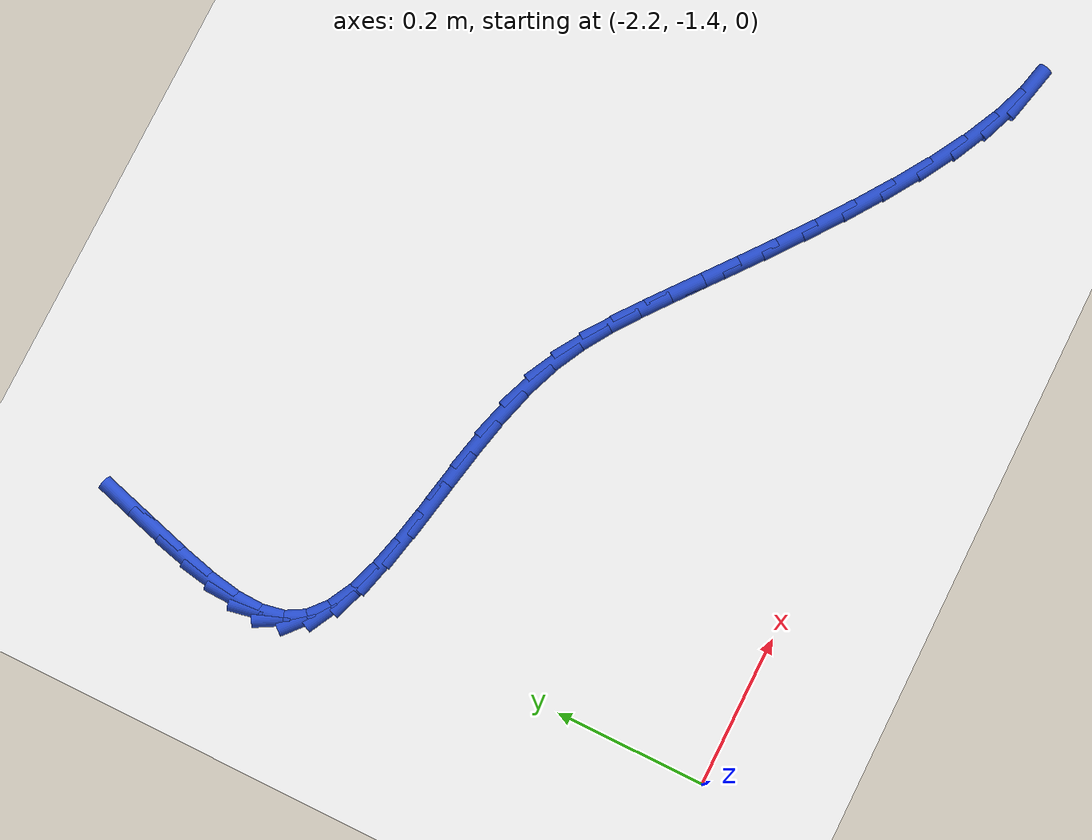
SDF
<sdf version="1.6">
 <world name="default">
  <model name="ground_plane">
   <static>1</static>
   <link name="link">
    <collision name="collision">
     <geometry><plane><normal>0 0 1</normal><size>100 100</size></plane></geometry>
     <surface><friction><ode><mu>100</mu><mu2>50</mu2></ode></friction></surface>
    </collision>
    <visual name="visual">
     <cast_shadows>0</cast_shadows>
     <geometry><plane><normal>0 0 1</normal><size>100 100</size></plane></geometry>
     <material>
      <script><uri>file://media/materials/scripts/gazebo.material</uri><name>Gazebo/WhiteGlow</name></script>
     </material>
    </visual>
   </link>
  </model>
  <model name="line">
   <link name="link_112">
    <pose>-2.204769506902918 -0.6014974802048982 0.01 0 1.57 1.2856489855063478</pose>
    <collision name="collision">
     <geometry><cylinder><radius>0.01</radius><length>0.08</length></cylinder></geometry>
    </collision>
    <visual name="visual">
     <material>
      <script><name>Gazebo/Blue</name><uri>file://media/materials/scripts/gazebo.material</uri></script>
     </material>
     <geometry><cylinder><radius>0.01</radius><length>0.08</length></cylinder></geometry>
    </visual>
   </link>
   <link name="link_113">
    <pose>-2.219062844298356 -0.6502576358702046 0.01 0 1.57 1.287739815175744</pose>
    <collision name="collision">
     <geometry><cylinder><radius>0.01</radius><length>0.08</length></cylinder></geometry>
    </collision>
    <visual name="visual">
     <material>
      <script><name>Gazebo/Blue</name><uri>file://media/materials/scripts/gazebo.material</uri></script>
     </material>
     <geometry><cylinder><radius>0.01</radius><length>0.08</length></cylinder></geometry>
    </visual>
   </link>
   <link name="link_114">
    <pose>-2.232395662308681 -0.6960959097266776 0.01 0 1.57 1.3212701812712226</pose>
    <collision name="collision">
     <geometry><cylinder><radius>0.01</radius><length>0.08</length></cylinder></geometry>
    </collision>
    <visual name="visual">
     <material>
      <script><name>Gazebo/Blue</name><uri>file://media/materials/scripts/gazebo.material</uri></script>
     </material>
     <geometry><cylinder><radius>0.01</radius><length>0.08</length></cylinder></geometry>
    </visual>
   </link>
   <link name="link_115">
    <pose>-2.24323895782572 -0.7386457969712786 0.01 0 1.57 1.397098030081824</pose>
    <collision name="collision">
     <geometry><cylinder><radius>0.01</radius><length>0.08</length></cylinder></geometry>
    </collision>
    <visual name="visual">
     <material>
      <script><name>Gazebo/Blue</name><uri>file://media/materials/scripts/gazebo.material</uri></script>
     </material>
     <geometry><cylinder><radius>0.01</radius><length>0.08</length></cylinder></geometry>
    </visual>
   </link>
   <link name="link_116">
    <pose>-2.2500637277413 -0.7775407928009685 0.01 0 1.57 1.5341878151946746</pose>
    <collision name="collision">
     <geometry><cylinder><radius>0.01</radius><length>0.08</length></cylinder></geometry>
    </collision>
    <visual name="visual">
     <material>
      <script><name>Gazebo/Blue</name><uri>file://media/materials/scripts/gazebo.material</uri></script>
     </material>
     <geometry><cylinder><radius>0.01</radius><length>0.08</length></cylinder></geometry>
    </visual>
   </link>
   <link name="link_117">
    <pose>-2.2513409689472486 -0.8124143924127079 0.01 0 1.57 -1.3828125246313863</pose>
    <collision name="collision">
     <geometry><cylinder><radius>0.01</radius><length>0.08</length></cylinder></geometry>
    </collision>
    <visual name="visual">
     <material>
      <script><name>Gazebo/Blue</name><uri>file://media/materials/scripts/gazebo.material</uri></script>
     </material>
     <geometry><cylinder><radius>0.01</radius><length>0.08</length></cylinder></geometry>
    </visual>
   </link>
   <link name="link_118">
    <pose>-2.2455416783353934 -0.8429000910034576 0.01 0 1.57 -1.0604818858150808</pose>
    <collision name="collision">
     <geometry><cylinder><radius>0.01</radius><length>0.08</length></cylinder></geometry>
    </collision>
    <visual name="visual">
     <material>
      <script><name>Gazebo/Blue</name><uri>file://media/materials/scripts/gazebo.material</uri></script>
     </material>
     <geometry><cylinder><radius>0.01</radius><length>0.08</length></cylinder></geometry>
    </visual>
   </link>
   <link name="link_119">
    <pose>-2.2311378111931037 -0.8686317766184315 0.01 0 1.57 -0.7204730807839345</pose>
    <collision name="collision">
     <geometry><cylinder><radius>0.01</radius><length>0.08</length></cylinder></geometry>
    </collision>
    <visual name="visual">
     <material>
      <script><name>Gazebo/Blue</name><uri>file://media/materials/scripts/gazebo.material</uri></script>
     </material>
     <geometry><cylinder><radius>0.01</radius><length>0.08</length></cylinder></geometry>
    </visual>
   </link>
   <link name="link_120">
    <pose>-2.207322821430002 -0.8895390810327521 0.01 0 1.57 -0.4838973346524141</pose>
    <collision name="collision">
     <geometry><cylinder><radius>0.01</radius><length>0.08</length></cylinder></geometry>
    </collision>
    <visual name="visual">
     <material>
      <script><name>Gazebo/Blue</name><uri>file://media/materials/scripts/gazebo.material</uri></script>
     </material>
     <geometry><cylinder><radius>0.01</radius><length>0.08</length></cylinder></geometry>
    </visual>
   </link>
   <link name="link_121">
    <pose>-2.1752935755647105 -0.9063728388613836 0.01 0 1.57 -0.3391317087028909</pose>
    <collision name="collision">
     <geometry><cylinder><radius>0.01</radius><length>0.08</length></cylinder></geometry>
    </collision>
    <visual name="visual">
     <material>
      <script><name>Gazebo/Blue</name><uri>file://media/materials/scripts/gazebo.material</uri></script>
     </material>
     <geometry><cylinder><radius>0.01</radius><length>0.08</length></cylinder></geometry>
    </visual>
   </link>
   <link name="link_122">
    <pose>-2.136591856276469 -0.9200252665441491 0.01 0 1.57 -0.2536603252751692</pose>
    <collision name="collision">
     <geometry><cylinder><radius>0.01</radius><length>0.08</length></cylinder></geometry>
    </collision>
    <visual name="visual">
     <material>
      <script><name>Gazebo/Blue</name><uri>file://media/materials/scripts/gazebo.material</uri></script>
     </material>
     <geometry><cylinder><radius>0.01</radius><length>0.08</length></cylinder></geometry>
    </visual>
   </link>
   <link name="link_123">
    <pose>-2.092759446244518 -0.9313885805208718 0.01 0 1.57 -0.20715255023216683</pose>
    <collision name="collision">
     <geometry><cylinder><radius>0.01</radius><length>0.08</length></cylinder></geometry>
    </collision>
    <visual name="visual">
     <material>
      <script><name>Gazebo/Blue</name><uri>file://media/materials/scripts/gazebo.material</uri></script>
     </material>
     <geometry><cylinder><radius>0.01</radius><length>0.08</length></cylinder></geometry>
    </visual>
   </link>
   <link name="link_124">
    <pose>-2.0453381281480967 -0.9413549972313751 0.01 0 1.57 -0.1889855914093791</pose>
    <collision name="collision">
     <geometry><cylinder><radius>0.01</radius><length>0.08</length></cylinder></geometry>
    </collision>
    <visual name="visual">
     <material>
      <script><name>Gazebo/Blue</name><uri>file://media/materials/scripts/gazebo.material</uri></script>
     </material>
     <geometry><cylinder><radius>0.01</radius><length>0.08</length></cylinder></geometry>
    </visual>
   </link>
   <link name="link_125">
    <pose>-1.9958696846664477 -0.9508167331154824 0.01 0 1.57 -0.19459472882993856</pose>
    <collision name="collision">
     <geometry><cylinder><radius>0.01</radius><length>0.08</length></cylinder></geometry>
    </collision>
    <visual name="visual">
     <material>
      <script><name>Gazebo/Blue</name><uri>file://media/materials/scripts/gazebo.material</uri></script>
     </material>
     <geometry><cylinder><radius>0.01</radius><length>0.08</length></cylinder></geometry>
    </visual>
   </link>
   <link name="link_126">
    <pose>-1.945895898478807 -0.9606660046130168 0.01 0 1.57 -0.22361065704793673</pose>
    <collision name="collision">
     <geometry><cylinder><radius>0.01</radius><length>0.08</length></cylinder></geometry>
    </collision>
    <visual name="visual">
     <material>
      <script><name>Gazebo/Blue</name><uri>file://media/materials/scripts/gazebo.material</uri></script>
     </material>
     <geometry><cylinder><radius>0.01</radius><length>0.08</length></cylinder></geometry>
    </visual>
   </link>
   <link name="link_127">
    <pose>-1.896958552264417 -0.9717950281638013 0.01 0 1.57 -0.2794066925540305</pose>
    <collision name="collision">
     <geometry><cylinder><radius>0.01</radius><length>0.08</length></cylinder></geometry>
    </collision>
    <visual name="visual">
     <material>
      <script><name>Gazebo/Blue</name><uri>file://media/materials/scripts/gazebo.material</uri></script>
     </material>
     <geometry><cylinder><radius>0.01</radius><length>0.08</length></cylinder></geometry>
    </visual>
   </link>
   <link name="link_128">
    <pose>-1.8505994287025174 -0.9850960202076596 0.01 0 1.57 -0.36877149154027516</pose>
    <collision name="collision">
     <geometry><cylinder><radius>0.01</radius><length>0.08</length></cylinder></geometry>
    </collision>
    <visual name="visual">
     <material>
      <script><name>Gazebo/Blue</name><uri>file://media/materials/scripts/gazebo.material</uri></script>
     </material>
     <geometry><cylinder><radius>0.01</radius><length>0.08</length></cylinder></geometry>
    </visual>
   </link>
   <link name="link_129">
    <pose>-1.8082998440835352 -1.0014427163179633 0.01 0 1.57 -0.47636420294218923</pose>
    <collision name="collision">
     <geometry><cylinder><radius>0.01</radius><length>0.08</length></cylinder></geometry>
    </collision>
    <visual name="visual">
     <material>
      <script><name>Gazebo/Blue</name><uri>file://media/materials/scripts/gazebo.material</uri></script>
     </material>
     <geometry><cylinder><radius>0.01</radius><length>0.08</length></cylinder></geometry>
    </visual>
   </link>
   <link name="link_130">
    <pose>-1.7699604983216075 -1.0212257545864087 0.01 0 1.57 -0.5681750108109384</pose>
    <collision name="collision">
     <geometry><cylinder><radius>0.01</radius><length>0.08</length></cylinder></geometry>
    </collision>
    <visual name="visual">
     <material>
      <script><name>Gazebo/Blue</name><uri>file://media/materials/scripts/gazebo.material</uri></script>
     </material>
     <geometry><cylinder><radius>0.01</radius><length>0.08</length></cylinder></geometry>
    </visual>
   </link>
   <link name="link_131">
    <pose>-1.7337881780093716 -1.0443180476957534 0.01 0 1.57 -0.6315847076759831</pose>
    <collision name="collision">
     <geometry><cylinder><radius>0.01</radius><length>0.08</length></cylinder></geometry>
    </collision>
    <visual name="visual">
     <material>
      <script><name>Gazebo/Blue</name><uri>file://media/materials/scripts/gazebo.material</uri></script>
     </material>
     <geometry><cylinder><radius>0.01</radius><length>0.08</length></cylinder></geometry>
    </visual>
   </link>
   <link name="link_132">
    <pose>-1.6979065099150332 -1.0705670914708982 0.01 0 1.57 -0.6629595439396965</pose>
    <collision name="collision">
     <geometry><cylinder><radius>0.01</radius><length>0.08</length></cylinder></geometry>
    </collision>
    <visual name="visual">
     <material>
      <script><name>Gazebo/Blue</name><uri>file://media/materials/scripts/gazebo.material</uri></script>
     </material>
     <geometry><cylinder><radius>0.01</radius><length>0.08</length></cylinder></geometry>
    </visual>
   </link>
   <link name="link_133">
    <pose>-1.6604463457617311 -1.0998181616963716 0.01 0 1.57 -0.6710727946694773</pose>
    <collision name="collision">
     <geometry><cylinder><radius>0.01</radius><length>0.08</length></cylinder></geometry>
    </collision>
    <visual name="visual">
     <material>
      <script><name>Gazebo/Blue</name><uri>file://media/materials/scripts/gazebo.material</uri></script>
     </material>
     <geometry><cylinder><radius>0.01</radius><length>0.08</length></cylinder></geometry>
    </visual>
   </link>
   <link name="link_134">
    <pose>-1.6203244007159971 -1.1316750587996418 0.01 0 1.57 -0.6704479248509405</pose>
    <collision name="collision">
     <geometry><cylinder><radius>0.01</radius><length>0.08</length></cylinder></geometry>
    </collision>
    <visual name="visual">
     <material>
      <script><name>Gazebo/Blue</name><uri>file://media/materials/scripts/gazebo.material</uri></script>
     </material>
     <geometry><cylinder><radius>0.01</radius><length>0.08</length></cylinder></geometry>
    </visual>
   </link>
   <link name="link_135">
    <pose>-1.5779382987837778 -1.1652865385133602 0.01 0 1.57 -0.6634870403324558</pose>
    <collision name="collision">
     <geometry><cylinder><radius>0.01</radius><length>0.08</length></cylinder></geometry>
    </collision>
    <visual name="visual">
     <material>
      <script><name>Gazebo/Blue</name><uri>file://media/materials/scripts/gazebo.material</uri></script>
     </material>
     <geometry><cylinder><radius>0.01</radius><length>0.08</length></cylinder></geometry>
    </visual>
   </link>
   <link name="link_136">
    <pose>-1.5338496474554724 -1.1997509687187082 0.01 0 1.57 -0.6504484054367676</pose>
    <collision name="collision">
     <geometry><cylinder><radius>0.01</radius><length>0.08</length></cylinder></geometry>
    </collision>
    <visual name="visual">
     <material>
      <script><name>Gazebo/Blue</name><uri>file://media/materials/scripts/gazebo.material</uri></script>
     </material>
     <geometry><cylinder><radius>0.01</radius><length>0.08</length></cylinder></geometry>
    </visual>
   </link>
   <link name="link_137">
    <pose>-1.4886200542214802 -1.2341667172968678 0.01 0 1.57 -0.6309325139071946</pose>
    <collision name="collision">
     <geometry><cylinder><radius>0.01</radius><length>0.08</length></cylinder></geometry>
    </collision>
    <visual name="visual">
     <material>
      <script><name>Gazebo/Blue</name><uri>file://media/materials/scripts/gazebo.material</uri></script>
     </material>
     <geometry><cylinder><radius>0.01</radius><length>0.08</length></cylinder></geometry>
    </visual>
   </link>
   <link name="link_138">
    <pose>-1.442811126572202 -1.2676321521290204 0.01 0 1.57 -0.6038809277990663</pose>
    <collision name="collision">
     <geometry><cylinder><radius>0.01</radius><length>0.08</length></cylinder></geometry>
    </collision>
    <visual name="visual">
     <material>
      <script><name>Gazebo/Blue</name><uri>file://media/materials/scripts/gazebo.material</uri></script>
     </material>
     <geometry><cylinder><radius>0.01</radius><length>0.08</length></cylinder></geometry>
    </visual>
   </link>
   <link name="link_139">
    <pose>-1.3969844719980378 -1.2992456410963475 0.01 0 1.57 -0.5674142371050721</pose>
    <collision name="collision">
     <geometry><cylinder><radius>0.01</radius><length>0.08</length></cylinder></geometry>
    </collision>
    <visual name="visual">
     <material>
      <script><name>Gazebo/Blue</name><uri>file://media/materials/scripts/gazebo.material</uri></script>
     </material>
     <geometry><cylinder><radius>0.01</radius><length>0.08</length></cylinder></geometry>
    </visual>
   </link>
   <link name="link_140">
    <pose>-1.351701697989386 -1.3281055520800331 0.01 0 1.57 -0.5184724622642867</pose>
    <collision name="collision">
     <geometry><cylinder><radius>0.01</radius><length>0.08</length></cylinder></geometry>
    </collision>
    <visual name="visual">
     <material>
      <script><name>Gazebo/Blue</name><uri>file://media/materials/scripts/gazebo.material</uri></script>
     </material>
     <geometry><cylinder><radius>0.01</radius><length>0.08</length></cylinder></geometry>
    </visual>
   </link>
   <link name="link_141">
    <pose>-1.307524412036647 -1.3533102529612568 0.01 0 1.57 -0.45215484995133287</pose>
    <collision name="collision">
     <geometry><cylinder><radius>0.01</radius><length>0.08</length></cylinder></geometry>
    </collision>
    <visual name="visual">
     <material>
      <script><name>Gazebo/Blue</name><uri>file://media/materials/scripts/gazebo.material</uri></script>
     </material>
     <geometry><cylinder><radius>0.01</radius><length>0.08</length></cylinder></geometry>
    </visual>
   </link>
   <link name="link_142">
    <pose>-1.2650142216302207 -1.3739581116212016 0.01 0 1.57 -0.3605938762189281</pose>
    <collision name="collision">
     <geometry><cylinder><radius>0.01</radius><length>0.08</length></cylinder></geometry>
    </collision>
    <visual name="visual">
     <material>
      <script><name>Gazebo/Blue</name><uri>file://media/materials/scripts/gazebo.material</uri></script>
     </material>
     <geometry><cylinder><radius>0.01</radius><length>0.08</length></cylinder></geometry>
    </visual>
   </link>
   <link name="link_143">
    <pose>-1.2247327342605066 -1.389147495941049 0.01 0 1.57 -0.23128841175661247</pose>
    <collision name="collision">
     <geometry><cylinder><radius>0.01</radius><length>0.08</length></cylinder></geometry>
    </collision>
    <visual name="visual">
     <material>
      <script><name>Gazebo/Blue</name><uri>file://media/materials/scripts/gazebo.material</uri></script>
     </material>
     <geometry><cylinder><radius>0.01</radius><length>0.08</length></cylinder></geometry>
    </visual>
   </link>
  </model>
 </world>
</sdf>
